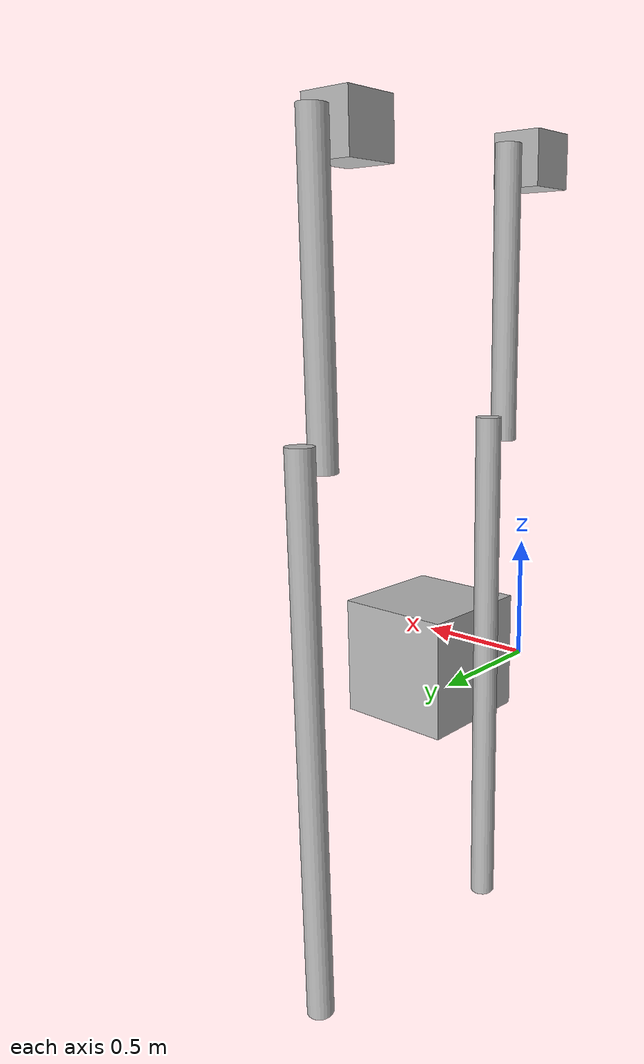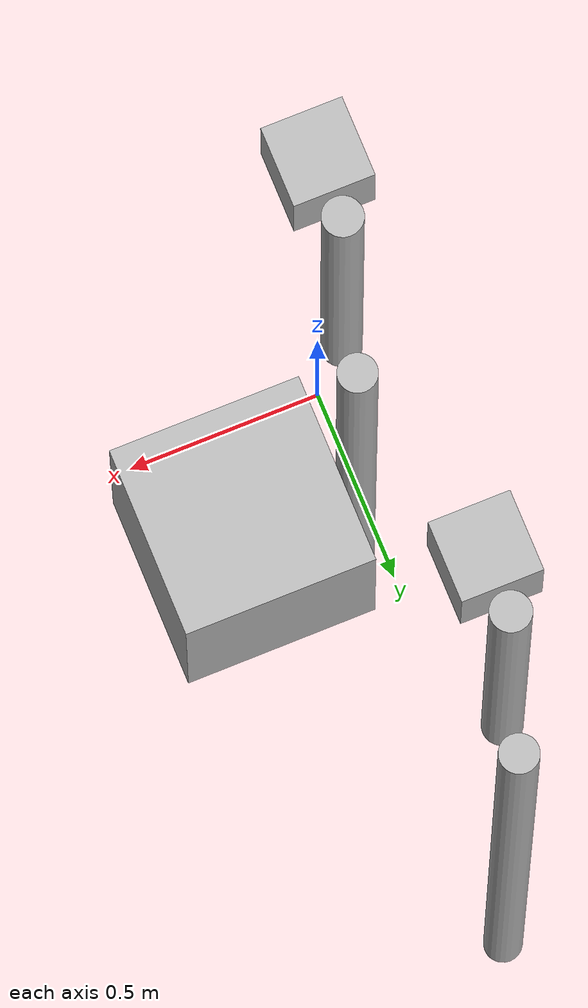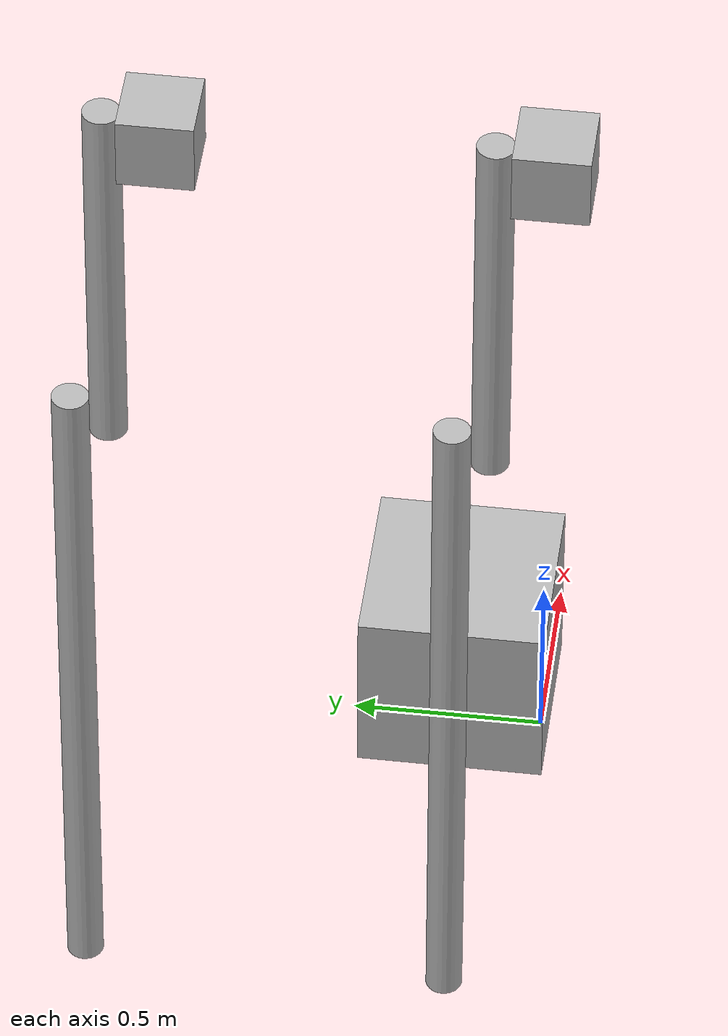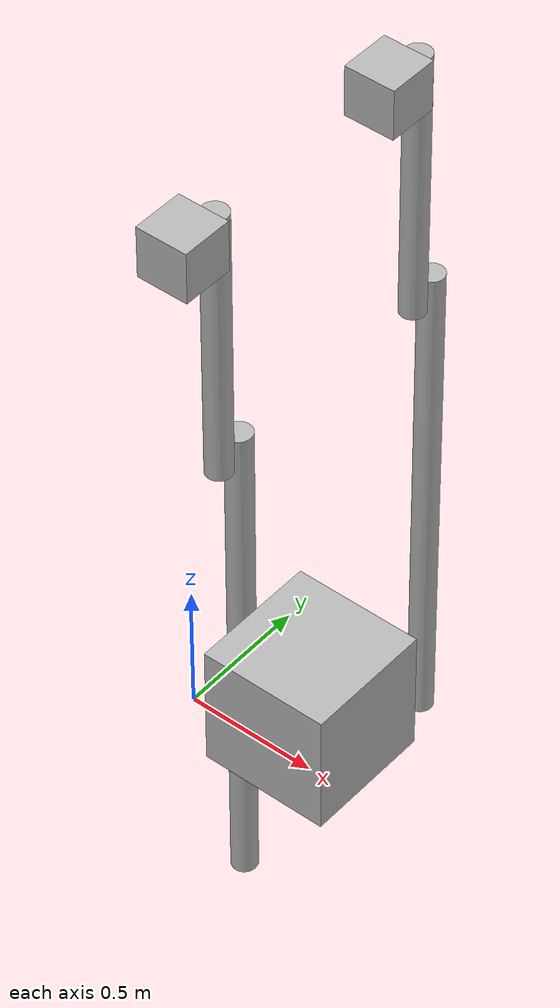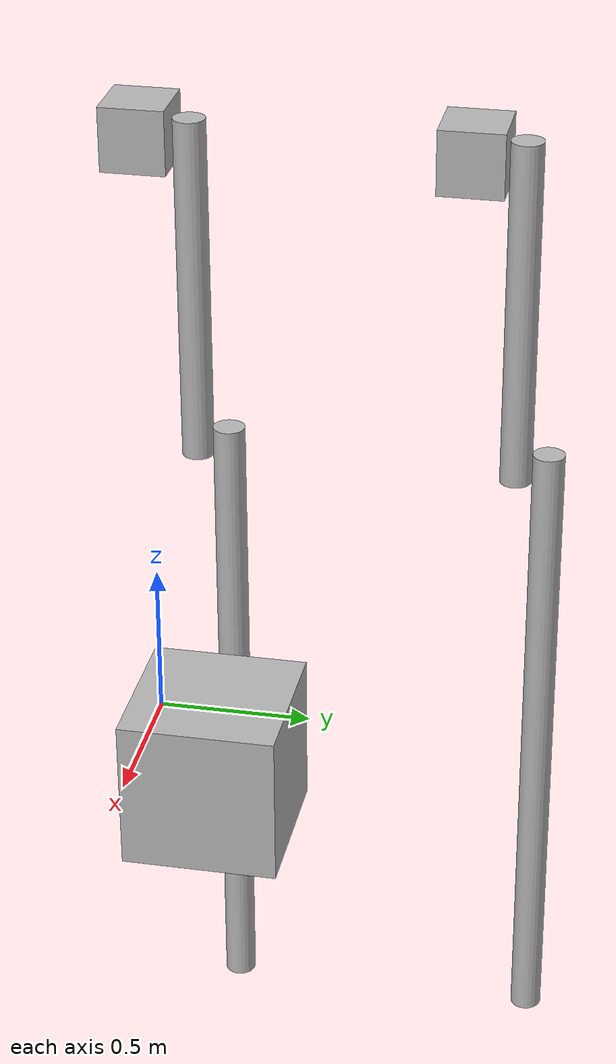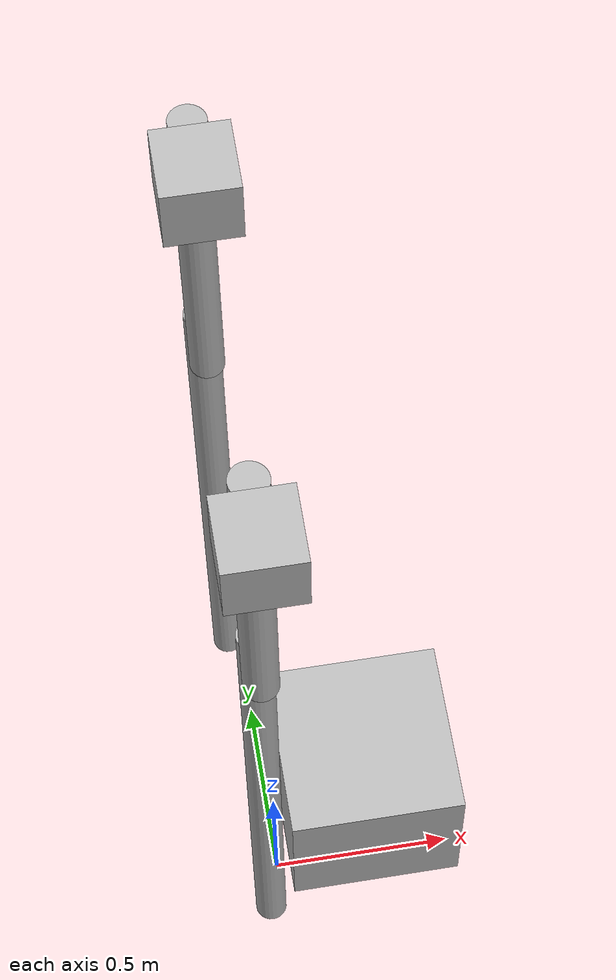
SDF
<?xml version="1.0"?>
<sdf version="1.7">
<world name="two_acrobots_and_box_world">
  <model name="box">
    <pose>0.3 0.25 0 0 0 0</pose>
    <link name="box">
      <collision name="box_collision">
        <geometry>
          <box>
            <size>0.5 0.5 0.5</size>
          </box>
        </geometry>
        <drake:proximity_properties>
          <drake:dissipation_timescale>0.05</drake:dissipation_timescale>
          <drake:compliant_hydroelastic/>
          <drake:mesh_resolution_hint>0.1</drake:mesh_resolution_hint>
          <drake:hydroelastic_modulus>5e7</drake:hydroelastic_modulus>
        </drake:proximity_properties>
      </collision>
      <visual name="box_visual">
        <geometry>
          <box>
            <size>0.5 0.5 0.5</size>
          </box>
        </geometry>
      </visual>
      <inertial>
        <mass>2.5</mass>
        <inertia>
          <ixx>0.2</ixx>
          <ixy>0.0</ixy>
          <ixz>0.0</ixz>
          <iyy>0.2</iyy>
          <iyz>0.0</iyz>
          <izz>0.2</izz>
        </inertia>
      </inertial>
    </link>
  </model>
  <model name="acrobot_one">
    <pose>0 1.0 2.0 0 0 0</pose>
    <link name="base_link">
      <collision name="base_link_collision">
        <geometry>
          <box>
            <size>0.2 0.2 0.2</size>
          </box>
        </geometry>
        <drake:proximity_properties>
          <drake:dissipation_timescale>0.05</drake:dissipation_timescale>
          <drake:compliant_hydroelastic/>
          <drake:mesh_resolution_hint>0.1</drake:mesh_resolution_hint>
          <drake:hydroelastic_modulus>5e7</drake:hydroelastic_modulus>
        </drake:proximity_properties>
      </collision>
      <visual name="base_link_visual">
        <geometry>
          <box>
            <size>0.2 0.2 0.2</size>
          </box>
        </geometry>
      </visual>
    </link>
    <joint name="base_weld" type="fixed">
      <child>base_link</child>
      <parent>world</parent>
    </joint>
    <link name="upper_link">
      <pose>0 0.15 0 0 0 0</pose>
      <inertial>
        <pose>0 0 -0.5 0 0 0</pose>
        <mass>1</mass>
        <inertia>
          <ixx>1</ixx>
          <ixy>0</ixy>
          <ixz>0</ixz>
          <iyy>0.083</iyy>
          <iyz>0</iyz>
          <izz>1</izz>
        </inertia>
      </inertial>
      <collision name="upper_link_collision">
        <pose>0 0 -0.5 0 0 0</pose>
        <geometry>
          <cylinder>
            <length>1.1</length>
            <radius>0.05</radius>
          </cylinder>
        </geometry>
        <drake:proximity_properties>
          <drake:dissipation_timescale>0.05</drake:dissipation_timescale>
          <drake:compliant_hydroelastic/>
          <drake:mesh_resolution_hint>0.05</drake:mesh_resolution_hint>
          <drake:hydroelastic_modulus>5e7</drake:hydroelastic_modulus>
        </drake:proximity_properties>
      </collision>
      <visual name="upper_link_visual">
        <pose>0 0 -0.5 0 0 0</pose>
        <geometry>
          <cylinder>
            <length>1.1</length>
            <radius>0.05</radius>
          </cylinder>
        </geometry>
      </visual>
    </link>
    <joint name="shoulder" type="revolute">
      <child>upper_link</child>
      <parent>base_link</parent>
      <axis>
        <xyz expressed_in="__model__">0 1 0</xyz>
        <limit>
          <effort>0</effort>
        </limit>
        <dynamics>
          <damping>0.1</damping>
          <friction>0</friction>
          <spring_reference>0</spring_reference>
          <spring_stiffness>0</spring_stiffness>
        </dynamics>
      </axis>
    </joint>
    <link name="lower_link">
      <pose>0 0.25 -1 0 0 0</pose>
      <inertial>
        <pose>0 0 -1 0 0 0</pose>
        <mass>1</mass>
        <inertia>
          <ixx>1</ixx>
          <ixy>0</ixy>
          <ixz>0</ixz>
          <iyy>0.33</iyy>
          <iyz>0</iyz>
          <izz>1</izz>
        </inertia>
      </inertial>
      <collision name="lower_link_collision">
        <pose>0 0 -1 0 0 0</pose>
        <geometry>
          <cylinder>
            <length>2.1</length>
            <radius>0.05</radius>
          </cylinder>
        </geometry>
        <drake:proximity_properties>
          <drake:dissipation_timescale>0.05</drake:dissipation_timescale>
          <drake:compliant_hydroelastic/>
          <drake:mesh_resolution_hint>0.05</drake:mesh_resolution_hint>
          <drake:hydroelastic_modulus>5e7</drake:hydroelastic_modulus>
        </drake:proximity_properties>
      </collision>
      <visual name="lower_link_visual">
        <pose>0 0 -1 0 0 0</pose>
        <geometry>
          <cylinder>
            <length>2.1</length>
            <radius>0.05</radius>
          </cylinder>
        </geometry>
      </visual>
    </link>
    <joint name="elbow" type="revolute">
      <child>lower_link</child>
      <parent>upper_link</parent>
      <axis>
        <xyz expressed_in="__model__">0 1 0</xyz>
        <limit>
        </limit>
        <dynamics>
          <damping>0.1</damping>
          <friction>0</friction>
          <spring_reference>0</spring_reference>
          <spring_stiffness>0</spring_stiffness>
        </dynamics>
      </axis>
    </joint>
    <frame name="hand">
      <pose relative_to="lower_link">0 0 -2.1 0 0 0</pose>
    </frame>
  </model>
  <model name="acrobot_two">
    <pose>0 0 2.0 0 0 0</pose>
    <link name="base_link">
      <collision name="base_link_collision">
        <geometry>
          <box>
            <size>0.2 0.2 0.2</size>
          </box>
        </geometry>
        <drake:proximity_properties>
          <drake:dissipation_timescale>0.05</drake:dissipation_timescale>
          <drake:compliant_hydroelastic/>
          <drake:mesh_resolution_hint>0.05</drake:mesh_resolution_hint>
          <drake:hydroelastic_modulus>5e7</drake:hydroelastic_modulus>
        </drake:proximity_properties>
      </collision>
      <visual name="base_link_visual">
        <geometry>
          <box>
            <size>0.2 0.2 0.2</size>
          </box>
        </geometry>
      </visual>
    </link>
    <joint name="base_weld" type="fixed">
      <child>base_link</child>
      <parent>world</parent>
    </joint>
    <link name="upper_link">
      <pose>0 0.15 0 0 0 0</pose>
      <inertial>
        <pose>0 0 -0.5 0 0 0</pose>
        <mass>1</mass>
        <inertia>
          <ixx>1</ixx>
          <ixy>0</ixy>
          <ixz>0</ixz>
          <iyy>0.083</iyy>
          <iyz>0</iyz>
          <izz>1</izz>
        </inertia>
      </inertial>
      <collision name="upper_link_collision">
        <pose>0 0 -0.5 0 0 0</pose>
        <geometry>
          <cylinder>
            <length>1.1</length>
            <radius>0.05</radius>
          </cylinder>
        </geometry>
        <drake:proximity_properties>
          <drake:dissipation_timescale>0.05</drake:dissipation_timescale>
          <drake:compliant_hydroelastic/>
          <drake:mesh_resolution_hint>0.05</drake:mesh_resolution_hint>
          <drake:hydroelastic_modulus>5e7</drake:hydroelastic_modulus>
        </drake:proximity_properties>
      </collision>
      <visual name="upper_link_visual">
        <pose>0 0 -0.5 0 0 0</pose>
        <geometry>
          <cylinder>
            <length>1.1</length>
            <radius>0.05</radius>
          </cylinder>
        </geometry>
      </visual>
    </link>
    <joint name="shoulder" type="revolute">
      <child>upper_link</child>
      <parent>base_link</parent>
      <axis>
        <xyz expressed_in="__model__">0 1 0</xyz>
        <limit>
          <effort>0</effort>
        </limit>
        <dynamics>
          <damping>0.1</damping>
          <friction>0</friction>
          <spring_reference>0</spring_reference>
          <spring_stiffness>0</spring_stiffness>
        </dynamics>
      </axis>
    </joint>
    <link name="lower_link">
      <pose>0 0.25 -1 0 0 0</pose>
      <inertial>
        <pose>0 0 -1 0 0 0</pose>
        <mass>1</mass>
        <inertia>
          <ixx>1</ixx>
          <ixy>0</ixy>
          <ixz>0</ixz>
          <iyy>0.33</iyy>
          <iyz>0</iyz>
          <izz>1</izz>
        </inertia>
      </inertial>
      <collision name="lower_link_collision">
        <pose>0 0 -1 0 0 0</pose>
        <geometry>
          <cylinder>
            <length>2.1</length>
            <radius>0.05</radius>
          </cylinder>
        </geometry>
        <drake:proximity_properties>
          <drake:dissipation_timescale>0.05</drake:dissipation_timescale>
          <drake:compliant_hydroelastic/>
          <drake:mesh_resolution_hint>0.05</drake:mesh_resolution_hint>
          <drake:hydroelastic_modulus>5e7</drake:hydroelastic_modulus>
        </drake:proximity_properties>
      </collision>
      <visual name="lower_link_visual">
        <pose>0 0 -1 0 0 0</pose>
        <geometry>
          <cylinder>
            <length>2.1</length>
            <radius>0.05</radius>
          </cylinder>
        </geometry>
      </visual>
    </link>
    <joint name="elbow" type="revolute">
      <child>lower_link</child>
      <parent>upper_link</parent>
      <axis>
        <xyz expressed_in="__model__">0 1 0</xyz>
        <limit>
        </limit>
        <dynamics>
          <damping>0.1</damping>
          <friction>0</friction>
          <spring_reference>0</spring_reference>
          <spring_stiffness>0</spring_stiffness>
        </dynamics>
      </axis>
    </joint>
    <frame name="hand">
      <pose relative_to="lower_link">0 0 -2.1 0 0 0</pose>
    </frame>
  </model>
</world>
</sdf>
